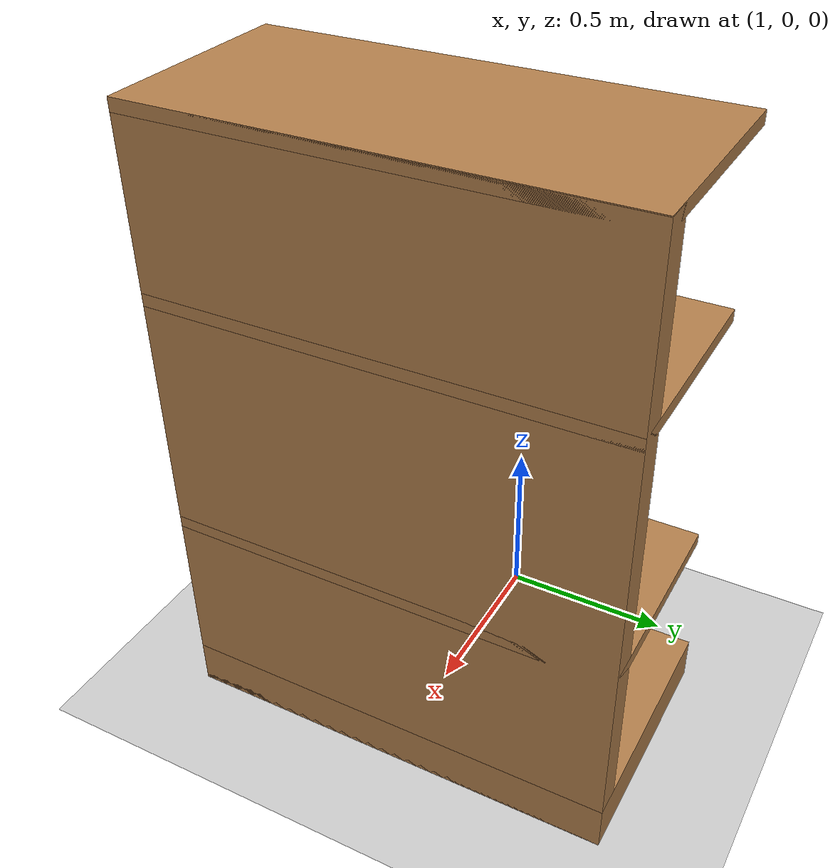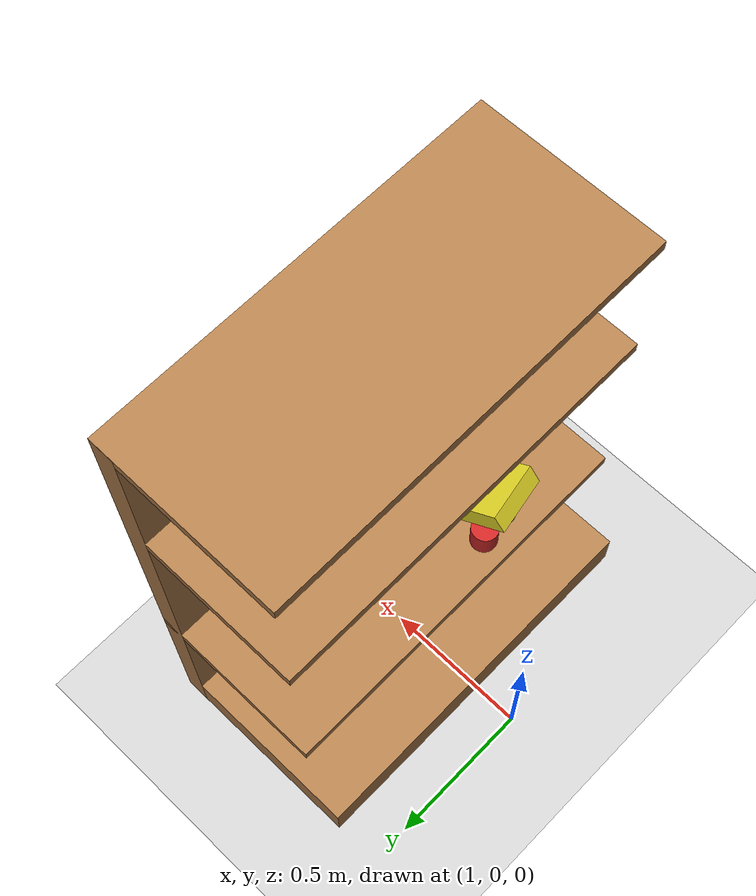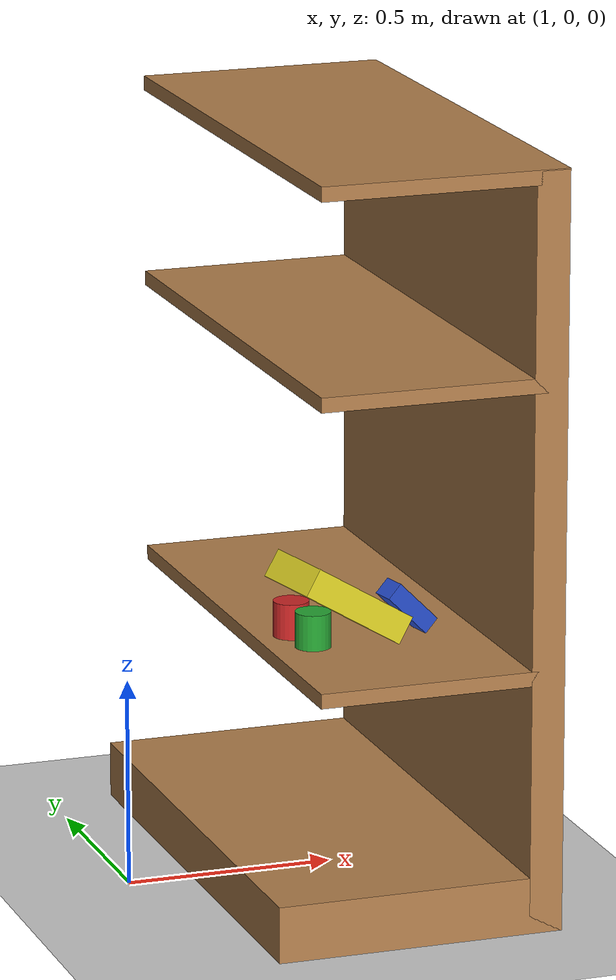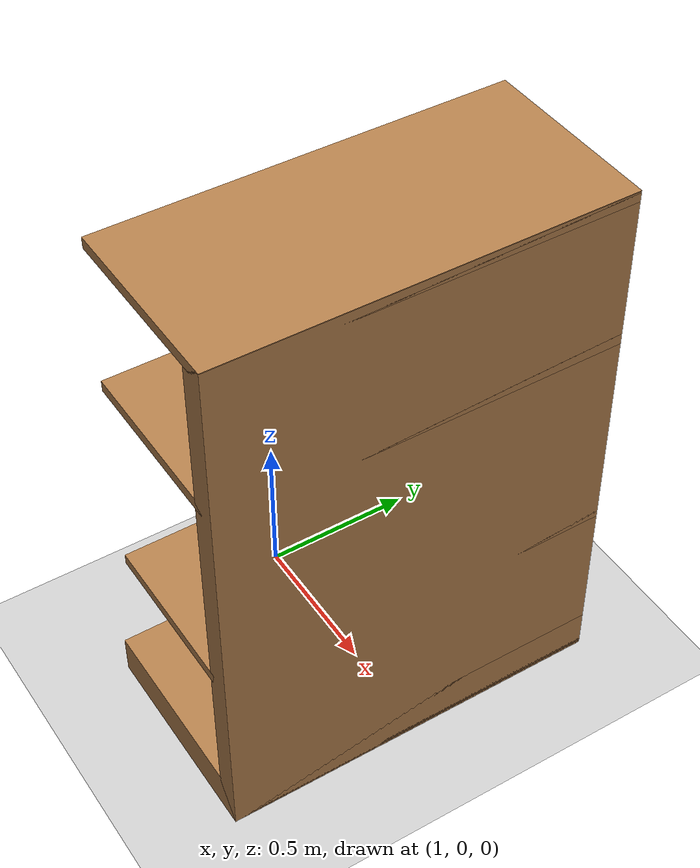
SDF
<sdf version="1.5">
 <world name="default">
  <light name="sun" type="directional">
   <pose>0 0 10 0 -0 0</pose>
   <diffuse>0.8 0.8 0.8 1</diffuse>
   <specular>0.2 0.2 0.2 1</specular>
   <attenuation>
    <range>1000</range>
    <constant>0.9</constant>
    <linear>0.01</linear>
    <quadratic>0.001</quadratic>
   </attenuation>
   <direction>-0.5 0.1 -0.9</direction>
  </light>
  <model name="ground_plane">
   <static>1</static>
   <link name="link">
    <collision name="collision">
     <geometry><plane><normal>0 0 1</normal><size>100 100</size></plane></geometry>
     <surface><friction><ode><mu>100</mu><mu2>50</mu2></ode></friction></surface>
    </collision>
    <visual name="visual">
     <cast_shadows>0</cast_shadows>
     <geometry><plane><normal>0 0 1</normal><size>100 100</size></plane></geometry>
     <material>
      <script><uri>file://media/materials/scripts/gazebo.material</uri><name>Gazebo/Grey</name></script>
     </material>
    </visual>
   </link>
  </model>
  <physics name="default_physics" default="0" type="ode">
   <real_time_update_rate>0</real_time_update_rate>
   <max_step_size>0.001</max_step_size>
   <real_time_factor>1</real_time_factor>
   <gravity>0 0 -9.8</gravity>
   <magnetic_field>5.5645e-06 2.28758e-05 -4.23884e-05</magnetic_field>
  </physics>
  <plugin name="scene_dynamics_anticipation" filename="libscene_dynamics_anticipation_gazebo_plugin.so"/>
  <plugin name="sda_contacts" filename="libsda_contact_plugin.so"/>
  <scene><ambient>0.4 0.4 0.4 1</ambient><background>0.7 0.7 0.7 1</background><shadows>1</shadows></scene>
  <spherical_coordinates>
   <surface_model>EARTH_WGS84</surface_model>
   <latitude_deg>0</latitude_deg>
   <longitude_deg>0</longitude_deg>
   <elevation>0</elevation>
   <heading_deg>0</heading_deg>
  </spherical_coordinates>
  <model name="shopping_rack">
   <link name="shopping_rack">
    <inertial>
     <pose>0 0.091 0.9345 0 -0 0</pose>
     <mass>25</mass>
     <inertia>
      <ixx>10.8688</ixx>
      <ixy>0</ixy>
      <ixz>0</ixz>
      <iyy>13.3504</iyy>
      <iyz>-0.172763</iyz>
      <izz>4.3451</izz>
     </inertia>
    </inertial>
    <collision name="shopping_rack_collision">
     <pose>0 0.305 0.9 0 -0 0</pose>
     <geometry><box><size>1.28 0.08 1.8</size></box></geometry>
     <surface><friction><ode><mu>100</mu><mu2>100</mu2></ode></friction></surface>
    </collision>
    <collision name="shopping_rack_collision_shopping_rack_1">
     <pose>0 0 0.0675 0 -0 0</pose>
     <geometry><box><size>1.28 0.69 0.135</size></box></geometry>
     <surface><friction><ode><mu>100</mu><mu2>100</mu2></ode></friction></surface>
    </collision>
    <collision name="shopping_rack_collision_shopping_rack_2">
     <pose>0 0.05 0.615 0 -0 0</pose>
     <geometry><box><size>1.28 0.59 0.035</size></box></geometry>
     <surface><friction><ode><mu>100</mu><mu2>100</mu2></ode></friction></surface>
    </collision>
    <collision name="shopping_rack_collision_shopping_rack_3">
     <pose>0 0.05 1.305 0 -0 0</pose>
     <geometry><box><size>1.28 0.59 0.035</size></box></geometry>
     <surface><friction><ode><mu>100</mu><mu2>100</mu2></ode></friction></surface>
    </collision>
    <collision name="shopping_rack_collision_shopping_rack_4">
     <pose>0 0.05 1.785 0 -0 0</pose>
     <geometry><box><size>1.28 0.59 0.035</size></box></geometry>
     <surface><friction><ode><mu>100</mu><mu2>100</mu2></ode></friction></surface>
    </collision>
    <visual name="shopping_rack_visual">
     <pose>0 0.305 0.9 0 -0 0</pose>
     <geometry><box><size>1.28 0.08 1.8</size></box></geometry>
     <material><script><name>Gazebo/Wood</name><uri>__default__</uri></script></material>
    </visual>
    <visual name="shopping_rack_visual_shopping_rack_1">
     <pose>0 0 0.0675 0 -0 0</pose>
     <geometry><box><size>1.28 0.69 0.135</size></box></geometry>
     <material><script><name>Gazebo/Wood</name><uri>__default__</uri></script></material>
    </visual>
    <visual name="shopping_rack_visual_shopping_rack_2">
     <pose>0 0.05 0.615 0 -0 0</pose>
     <geometry><box><size>1.28 0.59 0.035</size></box></geometry>
     <material><script><name>Gazebo/Wood</name><uri>__default__</uri></script></material>
    </visual>
    <visual name="shopping_rack_visual_shopping_rack_3">
     <pose>0 0.05 1.305 0 -0 0</pose>
     <geometry><box><size>1.28 0.59 0.035</size></box></geometry>
     <material><script><name>Gazebo/Wood</name><uri>__default__</uri></script></material>
    </visual>
    <visual name="shopping_rack_visual_shopping_rack_4">
     <pose>0 0.05 1.785 0 -0 0</pose>
     <geometry><box><size>1.28 0.59 0.035</size></box></geometry>
     <material><script><name>Gazebo/Wood</name><uri>__default__</uri></script></material>
    </visual>
   </link>
   <joint name="shopping_rack_joint" type="revolute">
    <child>shopping_rack</child>
    <parent>world</parent>
    <axis>
     <limit><lower>0</lower><upper>0</upper></limit>
     <dynamics>
      <damping>0</damping>
      <friction>0</friction>
      <spring_reference>0</spring_reference>
      <spring_stiffness>0</spring_stiffness>
     </dynamics>
     <use_parent_model_frame>1</use_parent_model_frame>
     <xyz>0 0 1</xyz>
    </axis>
   </joint>
   <pose>1.5 -0 0 -0 -0 -1.57</pose>
  </model>
  <model name="shopping-cornflakes-box-2-102">
   <link name="link">
    <inertial>
     <mass>0.5</mass>
     <inertia>
      <ixx>0.00370833</ixx>
      <ixy>0</ixy>
      <ixz>0</ixz>
      <iyy>0.00508854</iyy>
      <iyz>0</iyz>
      <izz>0.00178854</izz>
     </inertia>
    </inertial>
    <collision name="link_collision"><geometry><box><size>0.195 0.07 0.29</size></box></geometry></collision>
    <visual name="link_visual">
     <geometry><box><size>0.195 0.07 0.29</size></box></geometry>
     <material><script><name>Gazebo/YellowGlow</name><uri>__default__</uri></script></material>
    </visual>
   </link>
   <pose>1.43176 -0.260675 0.738099 -1.02117 -0.000106 1.7591</pose>
  </model>
  <model name="shopping-jodsalz-salt-box-3-103">
   <link name="link">
    <inertial>
     <mass>0.51</mass>
     <inertia>
      <ixx>0.000919062</ixx>
      <ixy>0</ixy>
      <ixz>0</ixz>
      <iyy>0.000986</iyy>
      <iyz>0</iyz>
      <izz>0.000239062</izz>
     </inertia>
    </inertial>
    <collision name="link_collision"><geometry><box><size>0.06 0.045 0.14</size></box></geometry></collision>
    <visual name="link_visual">
     <geometry><box><size>0.06 0.045 0.14</size></box></geometry>
     <material><script><name>Gazebo/BlueGlow</name><uri>__default__</uri></script></material>
    </visual>
   </link>
   <pose>1.60212 -0.253762 0.697524 0.796673 -5e-06 -1.38226</pose>
  </model>
  <model name="shopping-mexico-mix-can-0-100">
   <link name="link">
    <inertial>
     <mass>0.1</mass>
     <inertia>
      <ixx>0.000105365</ixx>
      <ixy>0</ixy>
      <ixz>0</ixz>
      <iyy>0.000105365</iyy>
      <iyz>0</iyz>
      <izz>9.03125e-05</izz>
     </inertia>
    </inertial>
    <collision name="link_collision">
     <geometry><cylinder><length>0.085</length><radius>0.0425</radius></cylinder></geometry>
    </collision>
    <visual name="link_visual">
     <geometry><cylinder><length>0.085</length><radius>0.0425</radius></cylinder></geometry>
     <material><script><name>Gazebo/Green</name><uri>__default__</uri></script></material>
    </visual>
   </link>
   <pose>1.35954 -0.287158 0.675005 1.5e-05 -0.000104 0.409944</pose>
  </model>
  <model name="shopping-mexico-mix-can-red-1-101">
   <link name="link">
    <inertial>
     <mass>0.1</mass>
     <inertia>
      <ixx>0.000105365</ixx>
      <ixy>0</ixy>
      <ixz>0</ixz>
      <iyy>0.000105365</iyy>
      <iyz>0</iyz>
      <izz>9.03125e-05</izz>
     </inertia>
    </inertial>
    <collision name="link_collision">
     <geometry><cylinder><length>0.085</length><radius>0.0425</radius></cylinder></geometry>
    </collision>
    <visual name="link_visual">
     <geometry><cylinder><length>0.085</length><radius>0.0425</radius></cylinder></geometry>
     <material><script><name>Gazebo/Red</name><uri>__default__</uri></script></material>
    </visual>
   </link>
   <pose>1.34053 -0.187251 0.675004 -4.6e-05 -5.8e-05 0.384205</pose>
  </model>
 </world>
</sdf>
